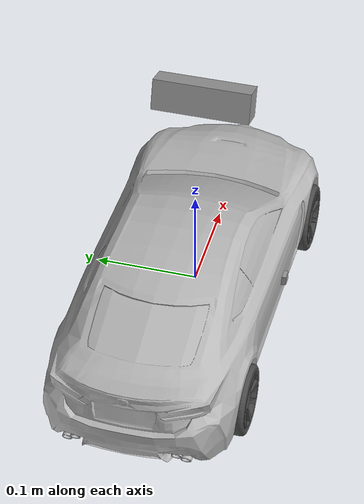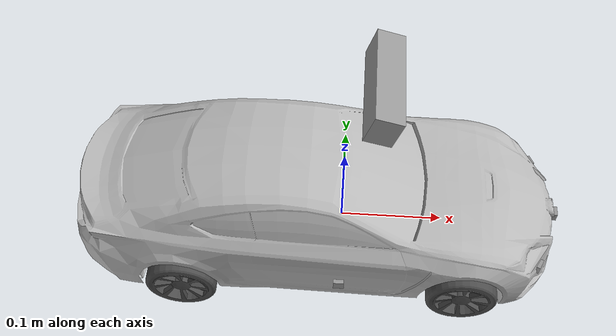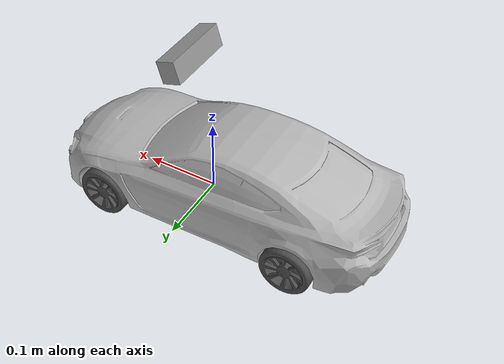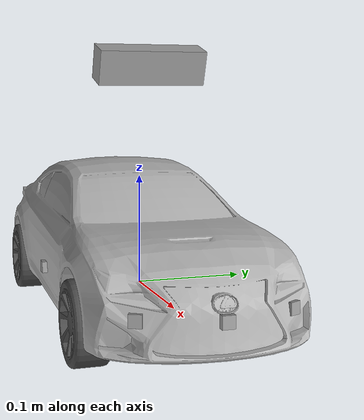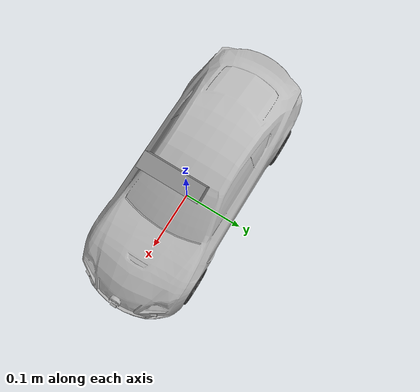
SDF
<?xml version='1.0'?>
<sdf version='1.6'>
  <model name='automobile'>
    <include>
      <uri>model://chassis</uri>
      <pose>0 0 0 0 0 0</pose>
    </include>
    <!-- including a left rear wheel -->
    <include>
      <uri>model://wheel_left</uri>
      <pose>-0.152 0.081 0 0 0 0</pose>
      <name>wheel_rear_left</name>
    </include>
    <!-- including a front rear wheel -->
    <include>
      <uri>model://wheel_right</uri>
      <pose>-0.152 -0.081 0 0 0 0</pose>
      <name>wheel_rear_right</name>
    </include>
    <!-- including a left steering comp. -->
    <include>
      <uri>model://steering_column</uri>
      <pose>0.112 0.0725 0 0 0 0</pose>
      <name>steer_left</name>
    </include>
    <!-- including a right steering comp. -->
    <include>
      <uri>model://steering_column</uri>
      <pose>0.112 -0.0725 0 0 0 0</pose>
      <name>steer_right</name>
    </include>
    <!-- including a left front wheel -->
    <include>
      <uri>model://wheel_left</uri>
      <pose>0.118 0.081 0 0 0 0</pose>
      <name>wheel_front_left</name>
    </include>
    <!-- including a right front wheel -->
    <include>
      <uri>model://wheel_right</uri>
      <pose>0.118 -0.081 0 0 0 0</pose>
      <name>wheel_front_right</name>
    </include>

    <include>
      <uri>model://depth_camera</uri>
      <pose>0.03 0 0.20 0 0.3 0</pose>
      <name>depth_camera</name>
    </include>

    <include>
      <uri>model://ray_front</uri>
      <pose>0.21 0 0.02 0 0 0</pose>
      <name>ray_front</name>
    </include>

    <include>
      <uri>model://ray_front_left</uri>
      <pose>0.19 0.06 0.02 0 0 0.4363</pose>
      <name>ray_front_left</name>
    </include>

    <include>
      <uri>model://ray_front_right</uri>
      <pose>0.19 -0.06 0.02 0 0 -0.4363</pose>
      <name>ray_front_right</name>
    </include>

    <include>
      <uri>model://ray_right</uri>
      <pose>0 -0.09 0.02 0 0 -1.5708</pose>
      <name>ray_right</name>
    </include>

    <!-- including the car body -->
    <include>
      <uri>model://car_body</uri>
      <pose>-0.024 0.0 -0.028 0 0.0 0</pose>
      <name>car_body</name>
    </include>

    <!-- LIST OF JOINTS -->
    <joint name='joint_leftrear_rim' type='revolute'>
      <parent>chassis::link</parent>
      <child>wheel_rear_left::link_rim</child>
      <pose frame=''>0 0 0 0 -0 0</pose>
      <axis>
        <xyz>0 0 -1</xyz>
        <use_parent_model_frame>0</use_parent_model_frame>
        <limit>
          <lower>-1.79769e+308</lower>
          <upper>1.79769e+308</upper>
          <effort>-1</effort>
          <velocity>-1</velocity>
        </limit>
        <dynamics>
          <spring_reference>0</spring_reference>
          <spring_stiffness>0</spring_stiffness>
          <damping>0</damping>
          <friction>0</friction>
        </dynamics>
      </axis>
      <physics>
        <ode>
          <limit>
            <cfm>0</cfm>
            <erp>0.2</erp>
          </limit>
          <suspension>
            <cfm>0</cfm>
            <erp>0.2</erp>
          </suspension>
        </ode>
      </physics>
    </joint>

    <joint name='joint_rightrear_rim' type='revolute'>
      <parent>chassis::link</parent>
      <child>wheel_rear_right::link_rim</child>
      <pose frame=''>0 0 0 0 -0 0</pose>
      <axis>
        <xyz>0 0 -1</xyz>
        <use_parent_model_frame>0</use_parent_model_frame>
        <limit>
          <lower>-1.79769e+308</lower>
          <upper>1.79769e+308</upper>
          <effort>-1</effort>
          <velocity>-1</velocity>
        </limit>
        <dynamics>
          <spring_reference>0</spring_reference>
          <spring_stiffness>0</spring_stiffness>
          <damping>0</damping>
          <friction>0</friction>
        </dynamics>
      </axis>
      <physics>
        <ode>
          <limit>
            <cfm>0</cfm>
            <erp>0.2</erp>
          </limit>
          <suspension>
            <cfm>0</cfm>
            <erp>0.2</erp>
          </suspension>
        </ode>
      </physics>
    </joint>

    <!-- Front right joint between the chassis and the steering comp. -->
    <joint name='joint_leftfront_steer' type='revolute'>
      <parent>chassis::link</parent>
      <child>steer_left::link_steer</child>
      <pose frame=''>0 0 0.005 0 -0 0</pose>
      <axis>
        <xyz>0 1 0</xyz>
        <use_parent_model_frame>0</use_parent_model_frame>
        <limit>
          <lower>-1.79769e+308</lower>
          <upper>1.79769e+308</upper>
          <effort>-1</effort>
          <velocity>-1</velocity>
        </limit>
        <dynamics>
          <spring_reference>0</spring_reference>
          <spring_stiffness>0</spring_stiffness>
          <damping>0</damping>
          <friction>0</friction>
        </dynamics>
      </axis>
      <physics>
        <ode>
          <limit>
            <cfm>0</cfm>
            <erp>0.2</erp>
          </limit>
          <suspension>
            <cfm>0</cfm>
            <erp>0.2</erp>
          </suspension>
        </ode>
      </physics>
    </joint>
    <!-- Front left joint between the chassis and the steering comp. -->
    <joint name='joint_rightfront_steer' type='revolute'>
      <parent>chassis::link</parent>
      <child>steer_right::link_steer</child>
      <pose frame=''>0 0 -0.005 0 -0 0</pose>
      <axis>
        <xyz>0 1 0</xyz>
        <use_parent_model_frame>0</use_parent_model_frame>
        <limit>
          <lower>-1.79769e+308</lower>
          <upper>1.79769e+308</upper>
          <effort>-1</effort>
          <velocity>-1</velocity>
        </limit>
        <dynamics>
          <spring_reference>0</spring_reference>
          <spring_stiffness>0</spring_stiffness>
          <damping>0</damping>
          <friction>0</friction>
        </dynamics>
      </axis>
      <physics>
        <ode>
          <limit>
            <cfm>0</cfm>
            <erp>0.2</erp>
          </limit>
          <suspension>
            <cfm>0</cfm>
            <erp>0.2</erp>
          </suspension>
        </ode>
      </physics>
    </joint>

    <!-- Right joint between the steering and the rim   -->
    <joint name='joint_rightfront_rim' type='revolute'>
      <parent>steer_right::link_steer</parent>
      <child>wheel_front_right::link_rim</child>
      <pose frame=''>0 0 0 0 -0 0</pose>
      <axis>
        <xyz>0 0 -1</xyz>
        <use_parent_model_frame>0</use_parent_model_frame>
        <limit>
          <lower>-1.79769e+308</lower>
          <upper>1.79769e+308</upper>
          <effort>-1</effort>
          <velocity>-1</velocity>
        </limit>
        <dynamics>
          <spring_reference>0</spring_reference>
          <spring_stiffness>0</spring_stiffness>
          <damping>0</damping>
          <friction>0</friction>
        </dynamics>
      </axis>
      <physics>
        <ode>
          <limit>
            <cfm>0</cfm>
            <erp>0.2</erp>
          </limit>
          <suspension>
            <cfm>0</cfm>
            <erp>0.2</erp>
          </suspension>
        </ode>
      </physics>
    </joint>

    <!-- Left joint between the steering and the rim   -->
    <joint name='joint_leftfront_rim' type='revolute'>
      <parent>steer_left::link_steer</parent>
      <child>wheel_front_left::link_rim</child>
      <pose frame=''>0 0 0 0 -0 0</pose>
      <axis>
        <xyz>0 0 -1</xyz>
        <use_parent_model_frame>0</use_parent_model_frame>
        <limit>
          <lower>-1.79769e+308</lower>
          <upper>1.79769e+308</upper>
          <effort>-1</effort>
          <velocity>-1</velocity>
        </limit>
        <dynamics>
          <spring_reference>0</spring_reference>
          <spring_stiffness>0</spring_stiffness>
          <damping>0</damping>
          <friction>0</friction>
        </dynamics>
      </axis>
      <physics>
        <ode>
          <limit>
            <cfm>0</cfm>
            <erp>0.2</erp>
          </limit>
          <suspension>
            <cfm>0</cfm>
            <erp>0.2</erp>
          </suspension>
        </ode>
      </physics>
    </joint>

    <!-- fixed joint for the car body -->
    <joint name='joint_body' type='fixed'>
      <parent>chassis::link</parent>
      <child>car_body::link</child>
      <pose frame=''>0 0 0 0 -0 0</pose>
      <physics>
        <ode>
          <limit>
            <cfm>0</cfm>
            <erp>0.2</erp>
          </limit>
          <suspension>
            <cfm>0</cfm>
            <erp>0.2</erp>
          </suspension>
        </ode>
      </physics>
    </joint>

    <!-- fixed joint for the depth camera -->
    <joint name='joint_depth_camera' type='fixed'>
      <parent>chassis::link</parent>
      <child>depth_camera::link_depth_camera</child>
      <pose frame=''>0 0 0 0 -0 0</pose>
      <physics>
        <ode>
          <limit>
            <cfm>0</cfm>
            <erp>0.2</erp>
          </limit>
          <suspension>
            <cfm>0</cfm>
            <erp>0.2</erp>
          </suspension>
        </ode>
      </physics>
    </joint>

    <!-- fixed joint for the 1st ranging sensor -->
    <joint name='joint_ray1' type='fixed'>
      <parent>chassis::link</parent>
      <child>ray_front::link_ranging_sensor</child>
      <pose frame=''>0 0 0 0 -0 0</pose>
      <physics>
        <ode>
          <limit>
            <cfm>0</cfm>
            <erp>0.2</erp>
          </limit>
          <suspension>
            <cfm>0</cfm>
            <erp>0.2</erp>
          </suspension>
        </ode>
      </physics>
    </joint>

    <!-- fixed joint for the 2nd ranging sensor -->
    <joint name='joint_ray2' type='fixed'>
      <parent>chassis::link</parent>
      <child>ray_front_left::link_ranging_sensor</child>
      <pose frame=''>0 0 0 0 -0 0</pose>
      <physics>
        <ode>
          <limit>
            <cfm>0</cfm>
            <erp>0.2</erp>
          </limit>
          <suspension>
            <cfm>0</cfm>
            <erp>0.2</erp>
          </suspension>
        </ode>
      </physics>
    </joint>

    <!-- fixed joint for the 3rd ranging sensor -->
    <joint name='joint_ray3' type='fixed'>
      <parent>chassis::link</parent>
      <child>ray_front_right::link_ranging_sensor</child>
      <pose frame=''>0 0 0 0 -0 0</pose>
      <physics>
        <ode>
          <limit>
            <cfm>0</cfm>
            <erp>0.2</erp>
          </limit>
          <suspension>
            <cfm>0</cfm>
            <erp>0.2</erp>
          </suspension>
        </ode>
      </physics>
    </joint>

    <!-- fixed joint for the 4th ranging sensor -->
    <joint name='joint_ray4' type='fixed'>
      <parent>chassis::link</parent>
      <child>ray_right::link_ranging_sensor</child>
      <pose frame=''>0 0 0 0 -0 0</pose>
      <physics>
        <ode>
          <limit>
            <cfm>0</cfm>
            <erp>0.2</erp>
          </limit>
          <suspension>
            <cfm>0</cfm>
            <erp>0.2</erp>
          </suspension>
        </ode>
      </physics>
    </joint>

    <!-- Plugin  -->
    <plugin name='CarLikeRobotPlugin' filename='libcar_plugin.so'>
      <wheelbase>0.26</wheelbase>
      <axletrack>0.162</axletrack>
      <wheelradius>0.0325</wheelradius>
      <speed_wheel_joints>
        <front_wheel_joints>
          <leftjoint>joint_leftfront_rim</leftjoint>
          <rightjoint>joint_rightfront_rim</rightjoint>
        </front_wheel_joints>
        <rear_wheel_joints>
          <leftjoint>joint_leftrear_rim</leftjoint>
          <rightjoint>joint_rightrear_rim</rightjoint>
        </rear_wheel_joints>
        <kp>0.01</kp>
        <ki>0.0</ki>
        <kd>0.0</kd>
      </speed_wheel_joints>
      <steer_wheel_joints>
        <leftjoint>joint_leftfront_steer</leftjoint>
        <rightjoint>joint_rightfront_steer</rightjoint>
        <kp>10</kp>
        <ki>0.0</ki>
        <kd>0.1</kd>
      </steer_wheel_joints>
      <initial_steer>0.0</initial_steer>
      <initial_speed>0.0</initial_speed>
      <robotNamespace>/</robotNamespace>
    </plugin>

    <plugin name='bno055' filename='libbno055_plugin.so'> </plugin>
    <plugin name='gps' filename='libgps_plugin.so'> </plugin>

  </model>
</sdf>

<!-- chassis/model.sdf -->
<sdf version='1.6'>
  <model name='chassis'>
    <link name='link'>
      <inertial>
        <mass>0.26244</mass>
        <inertia>
          <ixx>0.00283444</ixx>
          <ixy>0</ixy>
          <ixz>0</ixz>
          <iyy>0.00039867</iyy>
          <iyz>0</iyz>
          <izz>0.00323293</izz>
        </inertia>
        <pose frame=''>0 0 0 0 -0 0</pose>
      </inertial>
      <pose frame=''>0 0 0 0 0 1.5708</pose>
      <gravity>1</gravity>
      <kinematic>0</kinematic>
      <enable_wind>0</enable_wind>
      <visual name='visual'>
        <pose frame=''>0 0 -0.0065 0 0 -1.57079</pose>
        <geometry>
          <mesh>
            <uri>model://chassis/meshes/chassisV5.dae</uri>
            <scale>1 1 1</scale>
          </mesh>
        </geometry>
        <material>
          <lighting>1</lighting>
          <shader type='vertex'>
            <normal_map>__default__</normal_map>
          </shader>
          <ambient>0.6 0.6 0.6 1</ambient>
          <diffuse>0.85 0.85 0.85 1</diffuse>
          <specular>0.6 0.6 0.6 1</specular>
          <emissive>0 0 0 1</emissive>
        </material>
        <transparency>0</transparency>
        <cast_shadows>1</cast_shadows>
      </visual>
      <collision name='collision'>
        <laser_retro>0</laser_retro>
        <max_contacts>10</max_contacts>
        <pose frame=''>0 0 0 0 -0 0</pose>
        <geometry>
          <box>
            <size>0.135 0.36 0.002</size>
          </box>
        </geometry>
        <surface>
          <friction>
            <ode>
              <mu>1</mu>
              <mu2>1</mu2>
              <fdir1>0 0 0</fdir1>
              <slip1>0</slip1>
              <slip2>0</slip2>
            </ode>
            <torsional>
              <coefficient>1</coefficient>
              <patch_radius>0</patch_radius>
              <surface_radius>0</surface_radius>
              <use_patch_radius>1</use_patch_radius>
              <ode>
                <slip>0</slip>
              </ode>
            </torsional>
          </friction>
          <bounce>
            <restitution_coefficient>0</restitution_coefficient>
            <threshold>1e+06</threshold>
          </bounce>
          <contact>
            <collide_without_contact>0</collide_without_contact>
            <collide_without_contact_bitmask>1</collide_without_contact_bitmask>
            <collide_bitmask>1</collide_bitmask>
            <ode>
              <soft_cfm>0</soft_cfm>
              <soft_erp>0.2</soft_erp>
              <kp>1e+13</kp>
              <kd>1</kd>
              <max_vel>0.01</max_vel>
              <min_depth>0</min_depth>
            </ode>
            <bullet>
              <split_impulse>1</split_impulse>
              <split_impulse_penetration_threshold>-0.01</split_impulse_penetration_threshold>
              <soft_cfm>0</soft_cfm>
              <soft_erp>0.2</soft_erp>
              <kp>1e+13</kp>
              <kd>1</kd>
            </bullet>
          </contact>
        </surface>
      </collision>
    </link>
  </model>
</sdf>

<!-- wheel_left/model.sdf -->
<sdf version='1.6'>
  <model name='wheel_left'>

    <link name='link_rim'>
      <inertial>
        <mass>0.038</mass>
        <inertia>
          <ixx>0.00001283</ixx>
          <ixy>0</ixy>
          <ixz>0</ixz>
          <iyy>0.00001283</iyy>
          <iyz>0</iyz>
          <izz>0.00002069</izz>
        </inertia>
        <pose frame=''>0 0 0 0 -0 0</pose>
      </inertial>
      <pose frame=''>0.0 0.0 0 1.5708 0 0</pose>
      <gravity>1</gravity>
      <kinematic>0</kinematic>
      <enable_wind>0</enable_wind>
      <visual name='visual'>
       <pose frame=''>0 0 0 -1.5708 0 0</pose>
       <geometry>
          <mesh>
            <uri>model://wheel_left/meshes/rim.dae</uri>
            <scale>1 1 1</scale>
          </mesh>
        </geometry>
        <material>
          <lighting>1</lighting>
          <shader type='vertex'>
            <normal_map>__default__</normal_map>
          </shader>
          <ambient>0.2 0.2 0.2 1</ambient>
          <diffuse>0.3 0.3 0.3 1</diffuse>
          <specular>0.5 0.5 0.5 1</specular>
          <emissive>0.0 0.0 0.0 0.0</emissive>
        </material>
        <transparency>0</transparency>
        <cast_shadows>1</cast_shadows>
      </visual>
      <collision name='collision'>
        <laser_retro>0</laser_retro>
        <max_contacts>10</max_contacts>
        <pose frame=''>0 0 0 0 -0 0</pose>
        <geometry>
          <cylinder>
            <radius>0.033000</radius>
            <length>0.028000</length>
          </cylinder>
        </geometry>
        <surface>
          <friction>
            <ode>
              <mu>0.7</mu>
              <mu2>0.7</mu2>
              <fdir1>0 0 0</fdir1>
              <slip1>0</slip1>
              <slip2>0</slip2>
            </ode>
            <torsional>
              <coefficient>1</coefficient>
              <patch_radius>0</patch_radius>
              <surface_radius>0</surface_radius>
              <use_patch_radius>1</use_patch_radius>
              <ode>
                <slip>0</slip>
              </ode>
            </torsional>
          </friction>
          <bounce>
            <restitution_coefficient>0</restitution_coefficient>
            <threshold>1e+06</threshold>
          </bounce>
          <contact>
            <collide_without_contact>0</collide_without_contact>
            <collide_without_contact_bitmask>1</collide_without_contact_bitmask>
            <collide_bitmask>1</collide_bitmask>
            <ode>
              <soft_cfm>0</soft_cfm>
              <soft_erp>0.2</soft_erp>
              <kp>1e+07</kp>
              <kd>1</kd>
              <max_vel>0.01</max_vel>
              <min_depth>0</min_depth>
            </ode>
            <bullet>
              <split_impulse>1</split_impulse>
              <split_impulse_penetration_threshold>-0.01</split_impulse_penetration_threshold>
              <soft_cfm>0</soft_cfm>
              <soft_erp>0.2</soft_erp>
              <kp>1e+07</kp>
              <kd>1</kd>
            </bullet>
          </contact>
        </surface>
      </collision>
    </link>

  </model>
</sdf>

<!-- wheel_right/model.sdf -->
<sdf version='1.6'>
  <model name='wheel_right'>

    <link name='link_rim'>
      <inertial>
        <mass>0.038</mass>
        <inertia>
          <ixx>0.00001283</ixx>
          <ixy>0</ixy>
          <ixz>0</ixz>
          <iyy>0.00001283</iyy>
          <iyz>0</iyz>
          <izz>0.00002069</izz>
        </inertia>
        <pose frame=''>0 0 0 0 -0 0</pose>
      </inertial>
      <pose frame=''>0.0 0.0 0 1.5708 0 0</pose>
      <gravity>1</gravity>
      <kinematic>0</kinematic>
      <enable_wind>0</enable_wind>
      <visual name='visual'>
       <pose frame=''>0 0 0 -1.5708 0 0</pose>
       <geometry>
          <mesh>
            <uri>model://wheel_right/meshes/rim.dae</uri>
            <scale>1 1 1</scale>
          </mesh>
        </geometry>
        <material>
          <lighting>1</lighting>
          <shader type='vertex'>
            <normal_map>__default__</normal_map>
          </shader>
          <ambient>0.2 0.2 0.2 1</ambient>
          <diffuse>0.3 0.3 0.3 1</diffuse>
          <specular>0.5 0.5 0.5 1</specular>
          <emissive>0.0 0.0 0.0 0.0</emissive>
        </material>
        <transparency>0</transparency>
        <cast_shadows>1</cast_shadows>
      </visual>
      <collision name='collision'>
        <laser_retro>0</laser_retro>
        <max_contacts>10</max_contacts>
        <pose frame=''>0 0 0 0 -0 0</pose>
        <geometry>
          <cylinder>
            <radius>0.033000</radius>
            <length>0.028000</length>
          </cylinder>
        </geometry>
        <surface>
          <friction>
            <ode>
              <mu>0.7</mu>
              <mu2>0.7</mu2>
              <fdir1>0 0 0</fdir1>
              <slip1>0</slip1>
              <slip2>0</slip2>
            </ode>
            <torsional>
              <coefficient>1</coefficient>
              <patch_radius>0</patch_radius>
              <surface_radius>0</surface_radius>
              <use_patch_radius>1</use_patch_radius>
              <ode>
                <slip>0</slip>
              </ode>
            </torsional>
          </friction>
          <bounce>
            <restitution_coefficient>0</restitution_coefficient>
            <threshold>1e+06</threshold>
          </bounce>
          <contact>
            <collide_without_contact>0</collide_without_contact>
            <collide_without_contact_bitmask>1</collide_without_contact_bitmask>
            <collide_bitmask>1</collide_bitmask>
            <ode>
              <soft_cfm>0</soft_cfm>
              <soft_erp>0.2</soft_erp>
              <kp>1e+07</kp>
              <kd>1</kd>
              <max_vel>0.01</max_vel>
              <min_depth>0</min_depth>
            </ode>
            <bullet>
              <split_impulse>1</split_impulse>
              <split_impulse_penetration_threshold>-0.01</split_impulse_penetration_threshold>
              <soft_cfm>0</soft_cfm>
              <soft_erp>0.2</soft_erp>
              <kp>1e+07</kp>
              <kd>1</kd>
            </bullet>
          </contact>
        </surface>
      </collision>
    </link>

  </model>
</sdf>

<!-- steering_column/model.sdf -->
<sdf version='1.6'>
  <model name='steering_column'>
    <link name='link_steer'>
      <inertial>
        <mass>0.001</mass>
        <inertia>
          <ixx>0.00014583</ixx>
          <ixy>0</ixy>
          <ixz>0</ixz>
          <iyy>0.00014583</iyy>
          <iyz>0</iyz>
          <izz>0.000125</izz>
        </inertia>
        <pose frame=''>0 0 0 0 -0 0</pose>
      </inertial>
      <pose frame=''>0 0 0 1.5708 0 0</pose>
      <gravity>1</gravity>
      <self_collide>0</self_collide>
      <kinematic>0</kinematic>
      <enable_wind>0</enable_wind>
      <visual name='visual'>
        <pose frame=''>0 0 0 0 -0 0</pose>
        <geometry>
          <cylinder>
            <radius>0.001</radius>
            <length>0.01</length>
          </cylinder>
        </geometry>
        <material>
          <lighting>1</lighting>
          <script>
            <uri>file://media/materials/scripts/gazebo.material</uri>
            <name>Gazebo/Grey</name>
          </script>
          <shader type='vertex'>
            <normal_map>__default__</normal_map>
          </shader>
          <ambient>0.3 0.3 0.3 1</ambient>
          <diffuse>0.7 0.7 0.7 1</diffuse>
          <specular>0.01 0.01 0.01 1</specular>
          <emissive>0 0 0 1</emissive>
        </material>
        <transparency>0</transparency>
        <cast_shadows>1</cast_shadows>
      </visual>
      <collision name='collision'>
        <laser_retro>0</laser_retro>
        <max_contacts>10</max_contacts>
        <pose frame=''>0 0 0 0 -0 0</pose>
        <geometry>
          <cylinder>
            <radius>0.001</radius>
            <length>0.01</length>
          </cylinder>
        </geometry>
        <surface>
          <friction>
            <ode>
              <mu>1</mu>
              <mu2>1</mu2>
              <fdir1>0 0 0</fdir1>
              <slip1>0</slip1>
              <slip2>0</slip2>
            </ode>
            <torsional>
              <coefficient>1</coefficient>
              <patch_radius>0</patch_radius>
              <surface_radius>0</surface_radius>
              <use_patch_radius>1</use_patch_radius>
              <ode>
                <slip>0</slip>
              </ode>
            </torsional>
          </friction>
          <bounce>
            <restitution_coefficient>0</restitution_coefficient>
            <threshold>1e+06</threshold>
          </bounce>
          <contact>
            <collide_without_contact>0</collide_without_contact>
            <collide_without_contact_bitmask>1</collide_without_contact_bitmask>
            <collide_bitmask>1</collide_bitmask>
            <ode>
              <soft_cfm>0</soft_cfm>
              <soft_erp>0.2</soft_erp>
              <kp>1e+13</kp>
              <kd>1</kd>
              <max_vel>0.01</max_vel>
              <min_depth>0</min_depth>
            </ode>
            <bullet>
              <split_impulse>1</split_impulse>
              <split_impulse_penetration_threshold>-0.01</split_impulse_penetration_threshold>
              <soft_cfm>0</soft_cfm>
              <soft_erp>0.2</soft_erp>
              <kp>1e+13</kp>
              <kd>1</kd>
            </bullet>
          </contact>
        </surface>
      </collision>
    </link>

  </model>
</sdf>

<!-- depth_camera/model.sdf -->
<sdf version="1.6">
  <model name="depth_camera">
    <link name="link_depth_camera">
      <inertial>
        <mass>0.0052875</mass>
        <inertia>
          <ixx>4.1e-07</ixx>
          <ixy>0</ixy>
          <ixz>0</ixz>
          <iyy>7.9e-07</iyy>
          <iyz>0</iyz>
          <izz>4.1e-07</izz>
        </inertia>
        <pose frame=''>0 0 0 0 -0 0</pose>
      </inertial>
      <pose frame=''>0 0 0 0 -0 0</pose>
      <gravity>1</gravity>
      <self_collide>0</self_collide>
      <kinematic>0</kinematic>
      <enable_wind>0</enable_wind>
      <visual name='visual'>
        <pose frame=''>0 0 0 0 -0 0</pose>
        <geometry>
          <box>
            <size>0.025 0.095 0.03</size>
          </box>
        </geometry>
        <material>
          <lighting>1</lighting>
          <script>
            <uri>file://media/materials/scripts/gazebo.material</uri>
            <name>Gazebo/Grey</name>
          </script>
          <shader type='vertex'>
            <normal_map>__default__</normal_map>
          </shader>
          <ambient>0.3 0.3 0.3 1</ambient>
          <diffuse>0.7 0.7 0.7 1</diffuse>
          <specular>0.01 0.01 0.01 1</specular>
          <emissive>0 0 0 1</emissive>
        </material>
        <transparency>0</transparency>
        <cast_shadows>1</cast_shadows>
      </visual>
      <collision name='collision'>
        <laser_retro>0</laser_retro>
        <max_contacts>10</max_contacts>
        <pose frame=''>0 0 0 0 -0 0</pose>
        <geometry>
          <box>
            <size>0.025 0.095 0.03</size>
          </box>
        </geometry>
        <surface>
          <friction>
            <ode>
              <mu>1</mu>
              <mu2>1</mu2>
              <fdir1>0 0 0</fdir1>
              <slip1>0</slip1>
              <slip2>0</slip2>
            </ode>
            <torsional>
              <coefficient>1</coefficient>
              <patch_radius>0</patch_radius>
              <surface_radius>0</surface_radius>
              <use_patch_radius>1</use_patch_radius>
              <ode>
                <slip>0</slip>
              </ode>
            </torsional>
          </friction>
          <bounce>
            <restitution_coefficient>0</restitution_coefficient>
            <threshold>1e+06</threshold>
          </bounce>
          <contact>
            <collide_without_contact>0</collide_without_contact>
            <collide_without_contact_bitmask>1</collide_without_contact_bitmask>
            <collide_bitmask>1</collide_bitmask>
            <ode>
              <soft_cfm>0</soft_cfm>
              <soft_erp>0.2</soft_erp>
              <kp>1e+13</kp>
              <kd>1</kd>
              <max_vel>0.01</max_vel>
              <min_depth>0</min_depth>
            </ode>
            <bullet>
              <split_impulse>1</split_impulse>
              <split_impulse_penetration_threshold>-0.01</split_impulse_penetration_threshold>
              <soft_cfm>0</soft_cfm>
              <soft_erp>0.2</soft_erp>
              <kp>1e+13</kp>
              <kd>1</kd>
            </bullet>
          </contact>
        </surface>
      </collision>
      <sensor type="depth" name="depth_camera">
        <update_rate>20</update_rate>
        <camera name="head_depth">
          <horizontal_fov>1.2</horizontal_fov>
          <image>
              <width>640</width>
              <height>480</height>
              <format>R8G8B8</format>
          </image>
          <clip>
              <near>0.05</near>
              <far>3</far>
          </clip>
        </camera>
        <plugin name="depth_camera_controller" filename="libgazebo_ros_openni_kinect.so">
          <baseline>0.2</baseline>
          <alwaysOn>true</alwaysOn>
          <updateRate>1.0</updateRate>
          <imageTopicName>color_image_raw</imageTopicName>
          <cameraInfoTopicName>color_camera_info</cameraInfoTopicName>
          <depthImageTopicName>depth_image_raw</depthImageTopicName>
          <depthImageInfoTopicName>depth_camera_info</depthImageInfoTopicName>
          <pointCloudTopicName>points</pointCloudTopicName>
          <pointCloudCutoff>0.5</pointCloudCutoff>
          <pointCloudCutoffMax>3.0</pointCloudCutoffMax>
          <frameName>link_depth_camera</frameName>
          <hackBaseline>0.0</hackBaseline>
          <distortionK1>0.0</distortionK1>
          <distortionK2>0.0</distortionK2>
          <distortionK3>0.0</distortionK3>
          <distortionT1>0.0</distortionT1>
          <distortionT2>0.0</distortionT2>
          <robotNamespace></robotNamespace>
        </plugin>
      </sensor>
    </link>
  </model>
</sdf>

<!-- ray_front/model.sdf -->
<sdf version='1.6'>
  <model name='ray_front'>
    <link name='link_ranging_sensor'>
      <inertial>
        <mass>0.0052875</mass>
        <inertia>
          <ixx>4.1e-07</ixx>
          <ixy>0</ixy>
          <ixz>0</ixz>
          <iyy>7.9e-07</iyy>
          <iyz>0</iyz>
          <izz>4.1e-07</izz>
        </inertia>
        <pose frame=''>0 0 0 0 -0 0</pose>
      </inertial>
      <pose frame=''>0 0 0 0 -0 0</pose>
      <gravity>1</gravity>
      <self_collide>0</self_collide>
      <kinematic>0</kinematic>
      <enable_wind>0</enable_wind>
      <visual name='visual'>
        <pose frame=''>0 0 0 0 -0 0</pose>
        <geometry>
          <box>
            <size>0.005 0.01 0.01</size>
          </box>
        </geometry>
        <material>
          <lighting>1</lighting>
          <script>
            <uri>file://media/materials/scripts/gazebo.material</uri>
            <name>Gazebo/Grey</name>
          </script>
          <shader type='vertex'>
            <normal_map>__default__</normal_map>
          </shader>
          <ambient>0.3 0.3 0.3 1</ambient>
          <diffuse>0.7 0.7 0.7 1</diffuse>
          <specular>0.01 0.01 0.01 1</specular>
          <emissive>0 0 0 1</emissive>
        </material>
        <transparency>0</transparency>
        <cast_shadows>1</cast_shadows>
      </visual>
      <collision name='collision'>
        <laser_retro>0</laser_retro>
        <max_contacts>10</max_contacts>
        <pose frame=''>0 0 0 0 -0 0</pose>
        <geometry>
          <box>
            <size>0.005 0.01 0.01</size>
          </box>
        </geometry>
        <surface>
          <friction>
            <ode>
              <mu>1</mu>
              <mu2>1</mu2>
              <fdir1>0 0 0</fdir1>
              <slip1>0</slip1>
              <slip2>0</slip2>
            </ode>
            <torsional>
              <coefficient>1</coefficient>
              <patch_radius>0</patch_radius>
              <surface_radius>0</surface_radius>
              <use_patch_radius>1</use_patch_radius>
              <ode>
                <slip>0</slip>
              </ode>
            </torsional>
          </friction>
          <bounce>
            <restitution_coefficient>0</restitution_coefficient>
            <threshold>1e+06</threshold>
          </bounce>
          <contact>
            <collide_without_contact>0</collide_without_contact>
            <collide_without_contact_bitmask>1</collide_without_contact_bitmask>
            <collide_bitmask>1</collide_bitmask>
            <ode>
              <soft_cfm>0</soft_cfm>
              <soft_erp>0.2</soft_erp>
              <kp>1e+13</kp>
              <kd>1</kd>
              <max_vel>0.01</max_vel>
              <min_depth>0</min_depth>
            </ode>
            <bullet>
              <split_impulse>1</split_impulse>
              <split_impulse_penetration_threshold>-0.01</split_impulse_penetration_threshold>
              <soft_cfm>0</soft_cfm>
              <soft_erp>0.2</soft_erp>
              <kp>1e+13</kp>
              <kd>1</kd>
            </bullet>
          </contact>
        </surface>
      </collision>
      <sensor type="ray" name="ranging_sensor_front">
        <pose>0 0 0 0 0 0</pose>
        <visualize>true</visualize>
        <update_rate>50</update_rate>
        <ray>
          <scan>
              <horizontal>
                <samples>10</samples>
                <resolution>1</resolution>
                <min_angle>-0.22689</min_angle>
                <max_angle>0.22689</max_angle>
              </horizontal>
              <vertical>
                <samples>10</samples>
                <resolution>1</resolution>
                <min_angle>-0.08727</min_angle>
                <max_angle>0.08727</max_angle>
              </vertical>
          </scan>
          <range>
              <min>0.05</min>
              <max>1</max>
              <resolution>0.02</resolution>
          </range>
        </ray>

        <plugin name="gazebo_ros_range" filename="libgazebo_ros_range.so">
          <gaussianNoise>0</gaussianNoise>
          <alwaysOn>true</alwaysOn>
          <updateRate>10</updateRate>
          <topicName>ir_front</topicName>
          <frameName>base_ir_front</frameName>
          <radiation>INFRARED</radiation>
          <fov>0.4363</fov>
	        <robotNamespace></robotNamespace>
        </plugin>
      </sensor>
    </link>
  </model>
</sdf>

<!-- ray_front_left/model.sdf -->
<sdf version='1.6'>
  <model name='ray_front_left'>
    <link name='link_ranging_sensor'>
      <inertial>
        <mass>0.0052875</mass>
        <inertia>
          <ixx>4.1e-07</ixx>
          <ixy>0</ixy>
          <ixz>0</ixz>
          <iyy>7.9e-07</iyy>
          <iyz>0</iyz>
          <izz>4.1e-07</izz>
        </inertia>
        <pose frame=''>0 0 0 0 -0 0</pose>
      </inertial>
      <pose frame=''>0 0 0 0 -0 0</pose>
      <gravity>1</gravity>
      <self_collide>0</self_collide>
      <kinematic>0</kinematic>
      <enable_wind>0</enable_wind>
      <visual name='visual'>
        <pose frame=''>0 0 0 0 -0 0</pose>
        <geometry>
          <box>
            <size>0.005 0.01 0.01</size>
          </box>
        </geometry>
        <material>
          <lighting>1</lighting>
          <script>
            <uri>file://media/materials/scripts/gazebo.material</uri>
            <name>Gazebo/Grey</name>
          </script>
          <shader type='vertex'>
            <normal_map>__default__</normal_map>
          </shader>
          <ambient>0.3 0.3 0.3 1</ambient>
          <diffuse>0.7 0.7 0.7 1</diffuse>
          <specular>0.01 0.01 0.01 1</specular>
          <emissive>0 0 0 1</emissive>
        </material>
        <transparency>0</transparency>
        <cast_shadows>1</cast_shadows>
      </visual>
      <collision name='collision'>
        <laser_retro>0</laser_retro>
        <max_contacts>10</max_contacts>
        <pose frame=''>0 0 0 0 -0 0</pose>
        <geometry>
          <box>
            <size>0.005 0.01 0.01</size>
          </box>
        </geometry>
        <surface>
          <friction>
            <ode>
              <mu>1</mu>
              <mu2>1</mu2>
              <fdir1>0 0 0</fdir1>
              <slip1>0</slip1>
              <slip2>0</slip2>
            </ode>
            <torsional>
              <coefficient>1</coefficient>
              <patch_radius>0</patch_radius>
              <surface_radius>0</surface_radius>
              <use_patch_radius>1</use_patch_radius>
              <ode>
                <slip>0</slip>
              </ode>
            </torsional>
          </friction>
          <bounce>
            <restitution_coefficient>0</restitution_coefficient>
            <threshold>1e+06</threshold>
          </bounce>
          <contact>
            <collide_without_contact>0</collide_without_contact>
            <collide_without_contact_bitmask>1</collide_without_contact_bitmask>
            <collide_bitmask>1</collide_bitmask>
            <ode>
              <soft_cfm>0</soft_cfm>
              <soft_erp>0.2</soft_erp>
              <kp>1e+13</kp>
              <kd>1</kd>
              <max_vel>0.01</max_vel>
              <min_depth>0</min_depth>
            </ode>
            <bullet>
              <split_impulse>1</split_impulse>
              <split_impulse_penetration_threshold>-0.01</split_impulse_penetration_threshold>
              <soft_cfm>0</soft_cfm>
              <soft_erp>0.2</soft_erp>
              <kp>1e+13</kp>
              <kd>1</kd>
            </bullet>
          </contact>
        </surface>
      </collision>
      <sensor type="ray" name="ranging_sensor_front_left">
        <pose>0 0 0 0 0 0</pose>
        <visualize>true</visualize>
        <update_rate>50</update_rate>
        <ray>
          <scan>
              <horizontal>
                <samples>10</samples>
                <resolution>1</resolution>
                <min_angle>-0.22689</min_angle>
                <max_angle>0.22689</max_angle>
              </horizontal>
              <vertical>
                <samples>10</samples>
                <resolution>1</resolution>
                <min_angle>-0.08727</min_angle>
                <max_angle>0.08727</max_angle>
              </vertical>
          </scan>
          <range>
              <min>0.04</min>
              <max>0.5</max>
              <resolution>0.02</resolution>
          </range>
        </ray>

        <plugin name="gazebo_ros_range" filename="libgazebo_ros_range.so">
          <gaussianNoise>0</gaussianNoise>
          <alwaysOn>true</alwaysOn>
          <updateRate>10</updateRate>
          <topicName>ir_front_left</topicName>
          <frameName>base_ir_front_left</frameName>
          <radiation>INFRARED</radiation>
          <fov>0.4363</fov>
	        <robotNamespace></robotNamespace>
        </plugin>
      </sensor>
    </link>
  </model>
</sdf>

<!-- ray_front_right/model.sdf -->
<sdf version='1.6'>
  <model name='ray_front_right'>
    <link name='link_ranging_sensor'>
      <inertial>
        <mass>0.0052875</mass>
        <inertia>
          <ixx>4.1e-07</ixx>
          <ixy>0</ixy>
          <ixz>0</ixz>
          <iyy>7.9e-07</iyy>
          <iyz>0</iyz>
          <izz>4.1e-07</izz>
        </inertia>
        <pose frame=''>0 0 0 0 -0 0</pose>
      </inertial>
      <pose frame=''>0 0 0 0 -0 0</pose>
      <gravity>1</gravity>
      <self_collide>0</self_collide>
      <kinematic>0</kinematic>
      <enable_wind>0</enable_wind>
      <visual name='visual'>
        <pose frame=''>0 0 0 0 -0 0</pose>
        <geometry>
          <box>
            <size>0.005 0.01 0.01</size>
          </box>
        </geometry>
        <material>
          <lighting>1</lighting>
          <script>
            <uri>file://media/materials/scripts/gazebo.material</uri>
            <name>Gazebo/Grey</name>
          </script>
          <shader type='vertex'>
            <normal_map>__default__</normal_map>
          </shader>
          <ambient>0.3 0.3 0.3 1</ambient>
          <diffuse>0.7 0.7 0.7 1</diffuse>
          <specular>0.01 0.01 0.01 1</specular>
          <emissive>0 0 0 1</emissive>
        </material>
        <transparency>0</transparency>
        <cast_shadows>1</cast_shadows>
      </visual>
      <collision name='collision'>
        <laser_retro>0</laser_retro>
        <max_contacts>10</max_contacts>
        <pose frame=''>0 0 0 0 -0 0</pose>
        <geometry>
          <box>
            <size>0.005 0.01 0.01</size>
          </box>
        </geometry>
        <surface>
          <friction>
            <ode>
              <mu>1</mu>
              <mu2>1</mu2>
              <fdir1>0 0 0</fdir1>
              <slip1>0</slip1>
              <slip2>0</slip2>
            </ode>
            <torsional>
              <coefficient>1</coefficient>
              <patch_radius>0</patch_radius>
              <surface_radius>0</surface_radius>
              <use_patch_radius>1</use_patch_radius>
              <ode>
                <slip>0</slip>
              </ode>
            </torsional>
          </friction>
          <bounce>
            <restitution_coefficient>0</restitution_coefficient>
            <threshold>1e+06</threshold>
          </bounce>
          <contact>
            <collide_without_contact>0</collide_without_contact>
            <collide_without_contact_bitmask>1</collide_without_contact_bitmask>
            <collide_bitmask>1</collide_bitmask>
            <ode>
              <soft_cfm>0</soft_cfm>
              <soft_erp>0.2</soft_erp>
              <kp>1e+13</kp>
              <kd>1</kd>
              <max_vel>0.01</max_vel>
              <min_depth>0</min_depth>
            </ode>
            <bullet>
              <split_impulse>1</split_impulse>
              <split_impulse_penetration_threshold>-0.01</split_impulse_penetration_threshold>
              <soft_cfm>0</soft_cfm>
              <soft_erp>0.2</soft_erp>
              <kp>1e+13</kp>
              <kd>1</kd>
            </bullet>
          </contact>
        </surface>
      </collision>
      <sensor type="ray" name="ranging_sensor_front_right">
        <pose>0 0 0 0 0 0</pose>
        <visualize>true</visualize>
        <update_rate>50</update_rate>
        <ray>
          <scan>
              <horizontal>
                <samples>10</samples>
                <resolution>1</resolution>
                <min_angle>-0.22689</min_angle>
                <max_angle>0.22689</max_angle>
              </horizontal>
              <vertical>
                <samples>10</samples>
                <resolution>1</resolution>
                <min_angle>-0.08727</min_angle>
                <max_angle>0.08727</max_angle>
              </vertical>
          </scan>
          <range>
              <min>0.04</min>
              <max>0.5</max>
              <resolution>0.02</resolution>
          </range>
        </ray>

        <plugin name="gazebo_ros_range" filename="libgazebo_ros_range.so">
          <gaussianNoise>0</gaussianNoise>
          <alwaysOn>true</alwaysOn>
          <updateRate>10</updateRate>
          <topicName>ir_front_right</topicName>
          <frameName>base_ir_front_right</frameName>
          <radiation>INFRARED</radiation>
          <fov>0.4363</fov>
	        <robotNamespace></robotNamespace>
        </plugin>
      </sensor>
    </link>
  </model>
</sdf>

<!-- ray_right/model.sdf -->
<sdf version='1.6'>
  <model name='ray_right'>
    <link name='link_ranging_sensor'>
      <inertial>
        <mass>0.0052875</mass>
        <inertia>
          <ixx>4.1e-07</ixx>
          <ixy>0</ixy>
          <ixz>0</ixz>
          <iyy>7.9e-07</iyy>
          <iyz>0</iyz>
          <izz>4.1e-07</izz>
        </inertia>
        <pose frame=''>0 0 0 0 -0 0</pose>
      </inertial>
      <pose frame=''>0 0 0 0 -0 0</pose>
      <gravity>1</gravity>
      <self_collide>0</self_collide>
      <kinematic>0</kinematic>
      <enable_wind>0</enable_wind>
      <visual name='visual'>
        <pose frame=''>0 0 0 0 -0 0</pose>
        <geometry>
          <box>
            <size>0.005 0.01 0.01</size>
          </box>
        </geometry>
        <material>
          <lighting>1</lighting>
          <script>
            <uri>file://media/materials/scripts/gazebo.material</uri>
            <name>Gazebo/Grey</name>
          </script>
          <shader type='vertex'>
            <normal_map>__default__</normal_map>
          </shader>
          <ambient>0.3 0.3 0.3 1</ambient>
          <diffuse>0.7 0.7 0.7 1</diffuse>
          <specular>0.01 0.01 0.01 1</specular>
          <emissive>0 0 0 1</emissive>
        </material>
        <transparency>0</transparency>
        <cast_shadows>1</cast_shadows>
      </visual>
      <collision name='collision'>
        <laser_retro>0</laser_retro>
        <max_contacts>10</max_contacts>
        <pose frame=''>0 0 0 0 -0 0</pose>
        <geometry>
          <box>
            <size>0.005 0.01 0.01</size>
          </box>
        </geometry>
        <surface>
          <friction>
            <ode>
              <mu>1</mu>
              <mu2>1</mu2>
              <fdir1>0 0 0</fdir1>
              <slip1>0</slip1>
              <slip2>0</slip2>
            </ode>
            <torsional>
              <coefficient>1</coefficient>
              <patch_radius>0</patch_radius>
              <surface_radius>0</surface_radius>
              <use_patch_radius>1</use_patch_radius>
              <ode>
                <slip>0</slip>
              </ode>
            </torsional>
          </friction>
          <bounce>
            <restitution_coefficient>0</restitution_coefficient>
            <threshold>1e+06</threshold>
          </bounce>
          <contact>
            <collide_without_contact>0</collide_without_contact>
            <collide_without_contact_bitmask>1</collide_without_contact_bitmask>
            <collide_bitmask>1</collide_bitmask>
            <ode>
              <soft_cfm>0</soft_cfm>
              <soft_erp>0.2</soft_erp>
              <kp>1e+13</kp>
              <kd>1</kd>
              <max_vel>0.01</max_vel>
              <min_depth>0</min_depth>
            </ode>
            <bullet>
              <split_impulse>1</split_impulse>
              <split_impulse_penetration_threshold>-0.01</split_impulse_penetration_threshold>
              <soft_cfm>0</soft_cfm>
              <soft_erp>0.2</soft_erp>
              <kp>1e+13</kp>
              <kd>1</kd>
            </bullet>
          </contact>
        </surface>
      </collision>
      <sensor type="ray" name="ranging_sensor_right">
        <pose>0 0 0 0 0 0</pose>
        <visualize>true</visualize>
        <update_rate>50</update_rate>
        <ray>
          <scan>
              <horizontal>
                <samples>10</samples>
                <resolution>1</resolution>
                <min_angle>-0.22689</min_angle>
                <max_angle>0.22689</max_angle>
              </horizontal>
              <vertical>
                <samples>10</samples>
                <resolution>1</resolution>
                <min_angle>-0.08727</min_angle>
                <max_angle>0.08727</max_angle>
              </vertical>
          </scan>
          <range>
              <min>0.05</min>
              <max>1</max>
              <resolution>0.02</resolution>
          </range>
        </ray>

        <plugin name="gazebo_ros_range" filename="libgazebo_ros_range.so">
          <gaussianNoise>0</gaussianNoise>
          <alwaysOn>true</alwaysOn>
          <updateRate>10</updateRate>
          <topicName>ir_right</topicName>
          <frameName>base_ir_right</frameName>
          <radiation>INFRARED</radiation>
          <fov>0.4363</fov>
	        <robotNamespace></robotNamespace>
        </plugin>
      </sensor>
    </link>
  </model>
</sdf>

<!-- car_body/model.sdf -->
<sdf version='1.6'>
  <model name='body'>
    <link name='link'>
      <inertial>
        <mass>1</mass>
        <inertia>
          <ixx>0.166667</ixx>
          <ixy>0</ixy>
          <ixz>0</ixz>
          <iyy>0.166667</iyy>
          <iyz>0</iyz>
          <izz>0.166667</izz>
        </inertia>
      </inertial>
      <pose frame=''>0 -0 0 0 -0 0</pose>
      <visual name='visual'>
        <pose frame=''>0 0 0 0 -0 0</pose>
        <geometry>
          <mesh>
            <uri>model://car_body/meshes/CarBody.dae</uri>
            <scale>1 1 1</scale>
          </mesh>
        </geometry>
        <material>
            <script>
              <uri>model://car_body/materials/scripts</uri>
              <uri>model://car_body/materials/textures</uri>
              <name>CarBody/Image</name>
            </script>
        </material>
        <transparency>0</transparency>
        <cast_shadows>1</cast_shadows>
      </visual>
    </link>
    <static>0</static>
    <allow_auto_disable>1</allow_auto_disable>
  </model>
</sdf>
